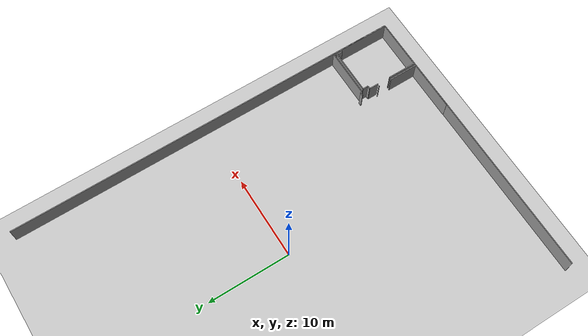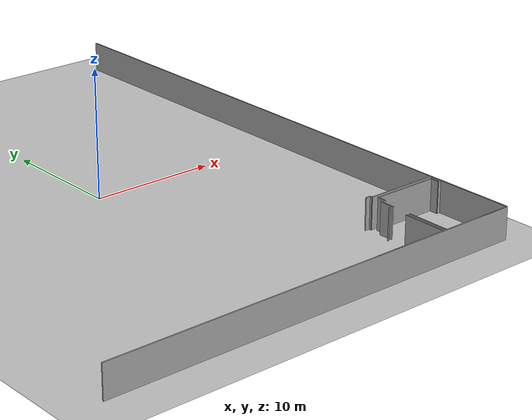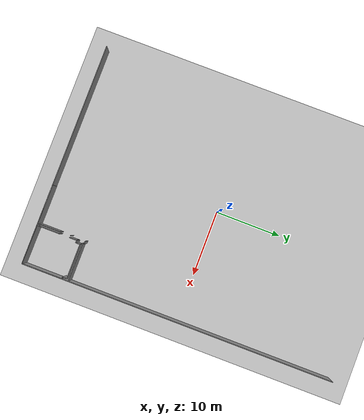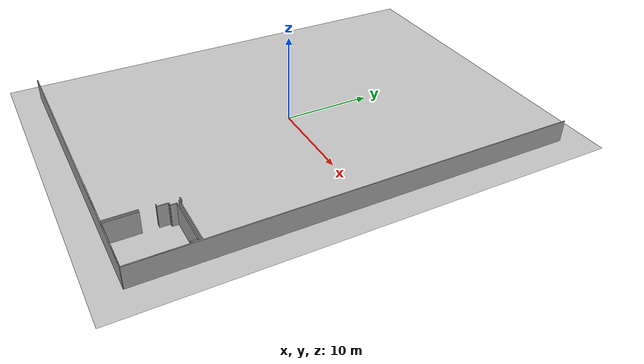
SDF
<sdf version="1.6">
 <world name="default">
  <model name="ground_plane">
   <static>1</static>
   <link name="link">
    <collision name="collision">
     <geometry><plane><normal>0 0 1</normal><size>100 100</size></plane></geometry>
     <surface><friction><ode><mu>100</mu><mu2>50</mu2></ode></friction></surface>
    </collision>
    <visual name="visual">
     <cast_shadows>0</cast_shadows>
     <geometry><plane><normal>0 0 1</normal><size>100 100</size></plane></geometry>
     <material>
      <script><uri>file://media/materials/scripts/gazebo.material</uri><name>Gazebo/Grey</name></script>
     </material>
    </visual>
   </link>
  </model>
  <model name="50055648">
   <static>1</static>
   <link name="Wall_148">
    <collision name="Wall_148_Collision">
     <geometry><box><size>5.87632270932 0.1 2.5</size></box></geometry>
     <pose>2.93816135466 0 1.25 0 0 0</pose>
    </collision>
    <visual name="Wall_148_Visual">
     <pose>2.93816135466 0 1.25 0 0 0</pose>
     <geometry><box><size>5.87632270932 0.1 2.5</size></box></geometry>
     <material>
      <script><uri>file://media/materials/scripts/gazebo.material</uri><name>Gazebo/Grey</name></script>
      <ambient>1 1 1 1</ambient>
     </material>
    </visual>
    <pose>34.2818307694 -40.9108116005 0 0 0 3.14159265359</pose>
   </link>
   <link name="Wall_149">
    <collision name="Wall_149_Collision">
     <geometry><box><size>0.204646790564 0.1 2.5</size></box></geometry>
     <pose>0.102323395282 0 1.25 0 0 0</pose>
    </collision>
    <visual name="Wall_149_Visual">
     <pose>0.102323395282 0 1.25 0 0 0</pose>
     <geometry><box><size>0.204646790564 0.1 2.5</size></box></geometry>
     <material>
      <script><uri>file://media/materials/scripts/gazebo.material</uri><name>Gazebo/Grey</name></script>
      <ambient>1 1 1 1</ambient>
     </material>
    </visual>
    <pose>28.4055080601 -40.9108116005 0 0 0 1.57079632679</pose>
   </link>
   <link name="Wall_150">
    <collision name="Wall_150_Collision">
     <geometry><box><size>0.401290634011 0.1 2.5</size></box></geometry>
     <pose>0.200645317006 0 1.25 0 0 0</pose>
    </collision>
    <visual name="Wall_150_Visual">
     <pose>0.200645317006 0 1.25 0 0 0</pose>
     <geometry><box><size>0.401290634011 0.1 2.5</size></box></geometry>
     <material>
      <script><uri>file://media/materials/scripts/gazebo.material</uri><name>Gazebo/Grey</name></script>
      <ambient>1 1 1 1</ambient>
     </material>
    </visual>
    <pose>28.4055080601 -40.7061648099 0 0 0 3.14159265359</pose>
   </link>
   <link name="Wall_257">
    <collision name="Wall_257_Collision">
     <geometry><box><size>0.0618640515237 0.1 2.5</size></box></geometry>
     <pose>0.0309320257619 0 1.25 0 0 0</pose>
    </collision>
    <visual name="Wall_257_Visual">
     <pose>0.0309320257619 0 1.25 0 0 0</pose>
     <geometry><box><size>0.0618640515237 0.1 2.5</size></box></geometry>
     <material>
      <script><uri>file://media/materials/scripts/gazebo.material</uri><name>Gazebo/Grey</name></script>
      <ambient>1 1 1 1</ambient>
     </material>
    </visual>
    <pose>28.0175556713 -42.9581687225 0 0 0 -1.57079632679</pose>
   </link>
   <link name="Wall_258">
    <collision name="Wall_258_Collision">
     <geometry><box><size>3.48636323217 0.1 2.5</size></box></geometry>
     <pose>1.74318161609 0 1.25 0 0 0</pose>
    </collision>
    <visual name="Wall_258_Visual">
     <pose>1.74318161609 0 1.25 0 0 0</pose>
     <geometry><box><size>3.48636323217 0.1 2.5</size></box></geometry>
     <material>
      <script><uri>file://media/materials/scripts/gazebo.material</uri><name>Gazebo/Grey</name></script>
      <ambient>1 1 1 1</ambient>
     </material>
    </visual>
    <pose>28.0175556713 -44.6023297468 0 0 0 -1.57079632679</pose>
   </link>
   <link name="Wall_259">
    <collision name="Wall_259_Collision">
     <geometry><box><size>6.01047155646 0.1 2.5</size></box></geometry>
     <pose>3.00523577823 0 1.25 0 0 0</pose>
    </collision>
    <visual name="Wall_259_Visual">
     <pose>3.00523577823 0 1.25 0 0 0</pose>
     <geometry><box><size>6.01047155646 0.1 2.5</size></box></geometry>
     <material>
      <script><uri>file://media/materials/scripts/gazebo.material</uri><name>Gazebo/Grey</name></script>
      <ambient>1 1 1 1</ambient>
     </material>
    </visual>
    <pose>28.0175556713 -48.088692979 0 0 0 3.14040909713</pose>
   </link>
   <link name="Wall_260">
    <collision name="Wall_260_Collision">
     <geometry><box><size>3.45371628917 0.1 2.5</size></box></geometry>
     <pose>1.72685814459 0 1.25 0 0 0</pose>
    </collision>
    <visual name="Wall_260_Visual">
     <pose>1.72685814459 0 1.25 0 0 0</pose>
     <geometry><box><size>3.45371628917 0.1 2.5</size></box></geometry>
     <material>
      <script><uri>file://media/materials/scripts/gazebo.material</uri><name>Gazebo/Grey</name></script>
      <ambient>1 1 1 1</ambient>
     </material>
    </visual>
    <pose>28.3225568781 -48.0787845683 0 0 0 1.57079632679</pose>
   </link>
   <link name="Wall_261">
    <collision name="Wall_261_Collision">
     <geometry><box><size>1.13743473787 0.1 2.5</size></box></geometry>
     <pose>0.568717368936 0 1.25 0 0 0</pose>
    </collision>
    <visual name="Wall_261_Visual">
     <pose>0.568717368936 0 1.25 0 0 0</pose>
     <geometry><box><size>1.13743473787 0.1 2.5</size></box></geometry>
     <material>
      <script><uri>file://media/materials/scripts/gazebo.material</uri><name>Gazebo/Grey</name></script>
      <ambient>1 1 1 1</ambient>
     </material>
    </visual>
    <pose>28.3225568781 -43.0324818028 0 0 0 1.57079632679</pose>
   </link>
   <link name="Wall_262">
    <collision name="Wall_262_Collision">
     <geometry><box><size>0.376265545407 0.1 2.5</size></box></geometry>
     <pose>0.188132772704 0 1.25 0 0 0</pose>
    </collision>
    <visual name="Wall_262_Visual">
     <pose>0.188132772704 0 1.25 0 0 0</pose>
     <geometry><box><size>0.376265545407 0.1 2.5</size></box></geometry>
     <material>
      <script><uri>file://media/materials/scripts/gazebo.material</uri><name>Gazebo/Grey</name></script>
      <ambient>1 1 1 1</ambient>
     </material>
    </visual>
    <pose>28.3225568781 -41.895047065 0 0 0 0.0</pose>
   </link>
   <link name="Wall_263">
    <collision name="Wall_263_Collision">
     <geometry><box><size>0.671739434204 0.1 2.5</size></box></geometry>
     <pose>0.335869717102 0 1.25 0 0 0</pose>
    </collision>
    <visual name="Wall_263_Visual">
     <pose>0.335869717102 0 1.25 0 0 0</pose>
     <geometry><box><size>0.671739434204 0.1 2.5</size></box></geometry>
     <material>
      <script><uri>file://media/materials/scripts/gazebo.material</uri><name>Gazebo/Grey</name></script>
      <ambient>1 1 1 1</ambient>
     </material>
    </visual>
    <pose>28.6988224235 -41.895047065 0 0 0 1.57079632679</pose>
   </link>
   <link name="Wall_264">
    <collision name="Wall_264_Collision">
     <geometry><box><size>5.31637047294 0.1 2.5</size></box></geometry>
     <pose>2.65818523647 0 1.25 0 0 0</pose>
    </collision>
    <visual name="Wall_264_Visual">
     <pose>2.65818523647 0 1.25 0 0 0</pose>
     <geometry><box><size>5.31637047294 0.1 2.5</size></box></geometry>
     <material>
      <script><uri>file://media/materials/scripts/gazebo.material</uri><name>Gazebo/Grey</name></script>
      <ambient>1 1 1 1</ambient>
     </material>
    </visual>
    <pose>28.6988224235 -41.2233076307 0 0 0 0.0</pose>
   </link>
   <link name="Wall_265">
    <collision name="Wall_265_Collision">
     <geometry><box><size>0.667674445193 0.1 2.5</size></box></geometry>
     <pose>0.333837222596 0 1.25 0 0 0</pose>
    </collision>
    <visual name="Wall_265_Visual">
     <pose>0.333837222596 0 1.25 0 0 0</pose>
     <geometry><box><size>0.667674445193 0.1 2.5</size></box></geometry>
     <material>
      <script><uri>file://media/materials/scripts/gazebo.material</uri><name>Gazebo/Grey</name></script>
      <ambient>1 1 1 1</ambient>
     </material>
    </visual>
    <pose>34.0151928964 -41.2233076307 0 0 0 -1.57079632679</pose>
   </link>
   <link name="Wall_266">
    <collision name="Wall_266_Collision">
     <geometry><box><size>0.278197685497 0.1 2.5</size></box></geometry>
     <pose>0.139098842748 0 1.25 0 0 0</pose>
    </collision>
    <visual name="Wall_266_Visual">
     <pose>0.139098842748 0 1.25 0 0 0</pose>
     <geometry><box><size>0.278197685497 0.1 2.5</size></box></geometry>
     <material>
      <script><uri>file://media/materials/scripts/gazebo.material</uri><name>Gazebo/Grey</name></script>
      <ambient>1 1 1 1</ambient>
     </material>
    </visual>
    <pose>34.0151928964 -41.8909820759 0 0 0 0.0</pose>
   </link>
   <link name="Wall_267">
    <collision name="Wall_267_Collision">
     <geometry><box><size>6.21206539551 0.1 2.5</size></box></geometry>
     <pose>3.10603269776 0 1.25 0 0 0</pose>
    </collision>
    <visual name="Wall_267_Visual">
     <pose>3.10603269776 0 1.25 0 0 0</pose>
     <geometry><box><size>6.21206539551 0.1 2.5</size></box></geometry>
     <material>
      <script><uri>file://media/materials/scripts/gazebo.material</uri><name>Gazebo/Grey</name></script>
      <ambient>1 1 1 1</ambient>
     </material>
    </visual>
    <pose>34.2933905819 -41.8909820759 0 0 0 -1.57079632679</pose>
   </link>
   <link name="Wall_268">
    <collision name="Wall_268_Collision">
     <geometry><box><size>5.97088300064 0.1 2.5</size></box></geometry>
     <pose>2.98544150032 0 1.25 0 0 0</pose>
    </collision>
    <visual name="Wall_268_Visual">
     <pose>2.98544150032 0 1.25 0 0 0</pose>
     <geometry><box><size>5.97088300064 0.1 2.5</size></box></geometry>
     <material>
      <script><uri>file://media/materials/scripts/gazebo.material</uri><name>Gazebo/Grey</name></script>
      <ambient>1 1 1 1</ambient>
     </material>
    </visual>
    <pose>34.2933905819 -48.1030474714 0 0 0 3.13752910555</pose>
   </link>
   <link name="Wall_276">
    <collision name="Wall_276_Collision">
     <geometry><box><size>48.1030474714 0.1 2.5</size></box></geometry>
     <pose>24.0515237357 0 1.25 0 0 0</pose>
    </collision>
    <visual name="Wall_276_Visual">
     <pose>24.0515237357 0 1.25 0 0 0</pose>
     <geometry><box><size>48.1030474714 0.1 2.5</size></box></geometry>
     <material>
      <script><uri>file://media/materials/scripts/gazebo.material</uri><name>Gazebo/Grey</name></script>
      <ambient>1 1 1 1</ambient>
     </material>
    </visual>
    <pose>34.3126992797 -48.1030474714 0 0 0 1.57079632679</pose>
   </link>
   <link name="Wall_277">
    <collision name="Wall_277_Collision">
     <geometry><box><size>34.3126992797 0.1 2.5</size></box></geometry>
     <pose>17.1563496399 0 1.25 0 0 0</pose>
    </collision>
    <visual name="Wall_277_Visual">
     <pose>17.1563496399 0 1.25 0 0 0</pose>
     <geometry><box><size>34.3126992797 0.1 2.5</size></box></geometry>
     <material>
      <script><uri>file://media/materials/scripts/gazebo.material</uri><name>Gazebo/Grey</name></script>
      <ambient>1 1 1 1</ambient>
     </material>
    </visual>
    <pose>34.3126992797 -48.1030474714 0 0 0 3.14159265359</pose>
   </link>
   <pose>-17.15 24.0530474714 0 0 0 0</pose>
  </model>
 </world>
</sdf>
